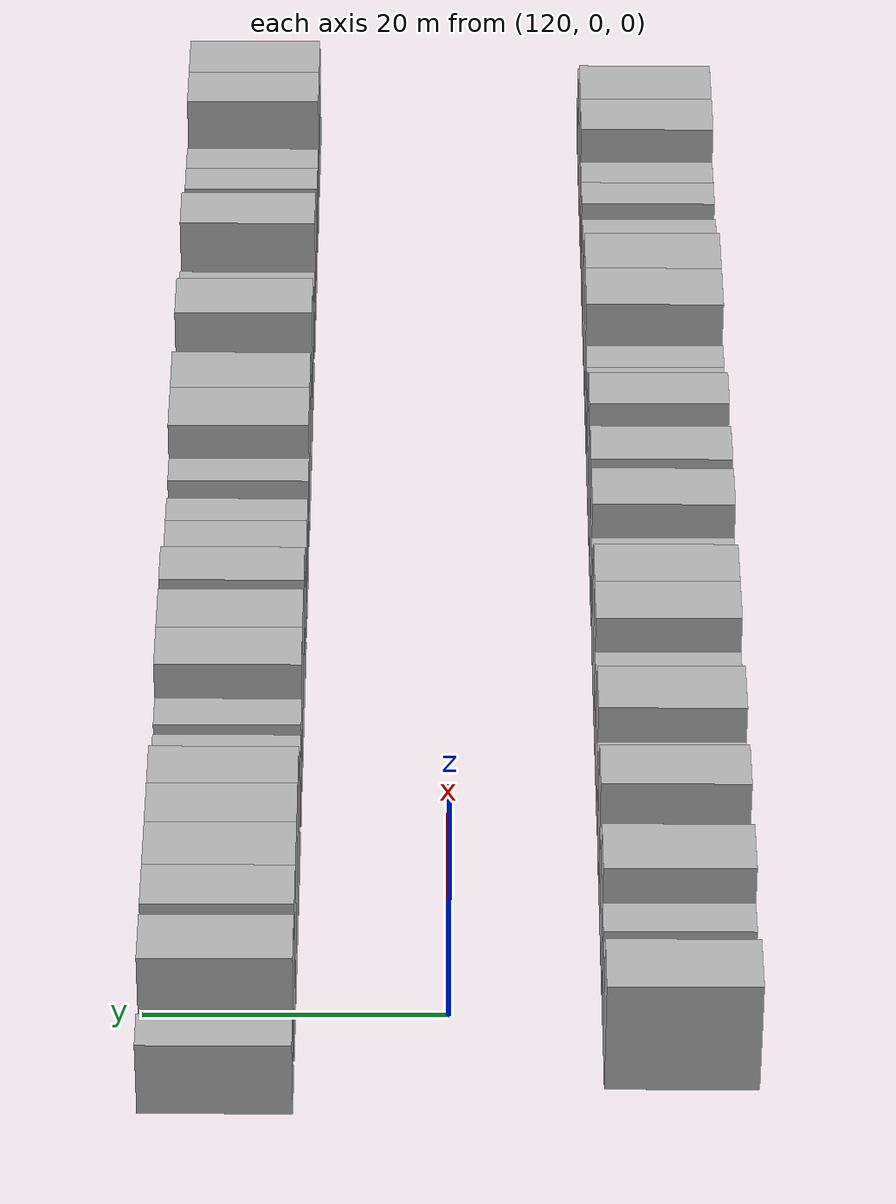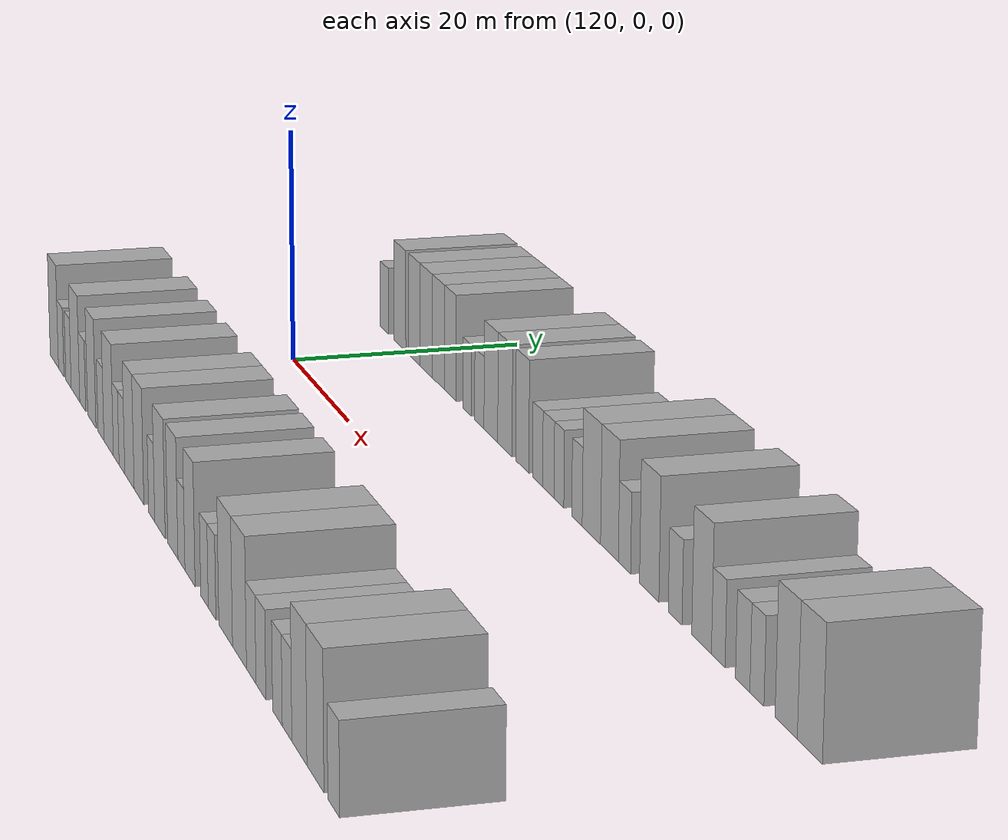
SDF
<sdf version="1.6">
 <world name="default">
  <model name="building_28">
   <static>1</static>
   <pose>112.2653 15.0000 0 0.000000 0.000000 1.570796</pose>
   <link name="link">
    <pose>0 0 3.00 0 0 0</pose>
    <collision name="collision"><geometry><box><size>10.0000 2.8916 6.0000</size></box></geometry></collision>
    <visual name="visual">
     <cast_shadows>0</cast_shadows>
     <geometry><box><size>10.0000 2.8916 6.0000</size></box></geometry>
     <material>
      <script>
       <uri>model://HANNAS_wall/materials/scripts</uri>
       <uri>model://HANNAS_wall/materials/textures</uri>
       <name>vrc/HANNAS_wall</name>
      </script>
     </material>
    </visual>
   </link>
  </model>
  <model name="building_29">
   <static>1</static>
   <pose>117.7975 15.0000 0 0.000000 0.000000 1.570796</pose>
   <link name="link">
    <pose>0 0 4.50 0 0 0</pose>
    <collision name="collision"><geometry><box><size>10.0000 4.1728 9.0000</size></box></geometry></collision>
    <visual name="visual">
     <cast_shadows>0</cast_shadows>
     <geometry><box><size>10.0000 4.1728 9.0000</size></box></geometry>
     <material>
      <script>
       <uri>model://HANNAS_wall/materials/scripts</uri>
       <uri>model://HANNAS_wall/materials/textures</uri>
       <name>vrc/HANNAS_wall</name>
      </script>
     </material>
    </visual>
   </link>
  </model>
  <model name="building_30">
   <static>1</static>
   <pose>122.7850 15.0000 0 0.000000 0.000000 1.570796</pose>
   <link name="link">
    <pose>0 0 4.50 0 0 0</pose>
    <collision name="collision"><geometry><box><size>10.0000 3.8023 9.0000</size></box></geometry></collision>
    <visual name="visual">
     <cast_shadows>0</cast_shadows>
     <geometry><box><size>10.0000 3.8023 9.0000</size></box></geometry>
     <material>
      <script>
       <uri>model://HANNAS_wall/materials/scripts</uri>
       <uri>model://HANNAS_wall/materials/textures</uri>
       <name>vrc/HANNAS_wall</name>
      </script>
     </material>
    </visual>
   </link>
  </model>
  <model name="building_31">
   <static>1</static>
   <pose>126.7876 15.0000 0 0.000000 0.000000 1.570796</pose>
   <link name="link">
    <pose>0 0 4.50 0 0 0</pose>
    <collision name="collision"><geometry><box><size>10.0000 4.2027 9.0000</size></box></geometry></collision>
    <visual name="visual">
     <cast_shadows>0</cast_shadows>
     <geometry><box><size>10.0000 4.2027 9.0000</size></box></geometry>
     <material>
      <script>
       <uri>model://HANNAS_wall/materials/scripts</uri>
       <uri>model://HANNAS_wall/materials/textures</uri>
       <name>vrc/HANNAS_wall</name>
      </script>
     </material>
    </visual>
   </link>
  </model>
  <model name="building_32">
   <static>1</static>
   <pose>130.8163 15.0000 0 0.000000 0.000000 1.570796</pose>
   <link name="link">
    <pose>0 0 4.50 0 0 0</pose>
    <collision name="collision"><geometry><box><size>10.0000 3.8548 9.0000</size></box></geometry></collision>
    <visual name="visual">
     <cast_shadows>0</cast_shadows>
     <geometry><box><size>10.0000 3.8548 9.0000</size></box></geometry>
     <material>
      <script>
       <uri>model://HANNAS_wall/materials/scripts</uri>
       <uri>model://HANNAS_wall/materials/textures</uri>
       <name>vrc/HANNAS_wall</name>
      </script>
     </material>
    </visual>
   </link>
  </model>
  <model name="building_33">
   <static>1</static>
   <pose>134.6118 15.0000 0 0.000000 0.000000 1.570796</pose>
   <link name="link">
    <pose>0 0 4.50 0 0 0</pose>
    <collision name="collision"><geometry><box><size>10.0000 3.7360 9.0000</size></box></geometry></collision>
    <visual name="visual">
     <cast_shadows>0</cast_shadows>
     <geometry><box><size>10.0000 3.7360 9.0000</size></box></geometry>
     <material>
      <script>
       <uri>model://HANNAS_wall/materials/scripts</uri>
       <uri>model://HANNAS_wall/materials/textures</uri>
       <name>vrc/HANNAS_wall</name>
      </script>
     </material>
    </visual>
   </link>
  </model>
  <model name="building_34">
   <static>1</static>
   <pose>139.8193 15.0000 0 0.000000 0.000000 1.570796</pose>
   <link name="link">
    <pose>0 0 3.00 0 0 0</pose>
    <collision name="collision"><geometry><box><size>10.0000 2.6792 6.0000</size></box></geometry></collision>
    <visual name="visual">
     <cast_shadows>0</cast_shadows>
     <geometry><box><size>10.0000 2.6792 6.0000</size></box></geometry>
     <material>
      <script>
       <uri>model://HANNAS_wall/materials/scripts</uri>
       <uri>model://HANNAS_wall/materials/textures</uri>
       <name>vrc/HANNAS_wall</name>
      </script>
     </material>
    </visual>
   </link>
  </model>
  <model name="building_35">
   <static>1</static>
   <pose>143.5495 15.0000 0 0.000000 0.000000 1.570796</pose>
   <link name="link">
    <pose>0 0 3.00 0 0 0</pose>
    <collision name="collision"><geometry><box><size>10.0000 2.7812 6.0000</size></box></geometry></collision>
    <visual name="visual">
     <cast_shadows>0</cast_shadows>
     <geometry><box><size>10.0000 2.7812 6.0000</size></box></geometry>
     <material>
      <script>
       <uri>model://HANNAS_wall/materials/scripts</uri>
       <uri>model://HANNAS_wall/materials/textures</uri>
       <name>vrc/HANNAS_wall</name>
      </script>
     </material>
    </visual>
   </link>
  </model>
  <model name="building_36">
   <static>1</static>
   <pose>146.9431 15.0000 0 0.000000 0.000000 1.570796</pose>
   <link name="link">
    <pose>0 0 4.50 0 0 0</pose>
    <collision name="collision"><geometry><box><size>10.0000 4.0059 9.0000</size></box></geometry></collision>
    <visual name="visual">
     <cast_shadows>0</cast_shadows>
     <geometry><box><size>10.0000 4.0059 9.0000</size></box></geometry>
     <material>
      <script>
       <uri>model://HANNAS_wall/materials/scripts</uri>
       <uri>model://HANNAS_wall/materials/textures</uri>
       <name>vrc/HANNAS_wall</name>
      </script>
     </material>
    </visual>
   </link>
  </model>
  <model name="building_37">
   <static>1</static>
   <pose>150.9818 15.0000 0 0.000000 0.000000 1.570796</pose>
   <link name="link">
    <pose>0 0 4.50 0 0 0</pose>
    <collision name="collision"><geometry><box><size>10.0000 4.0716 9.0000</size></box></geometry></collision>
    <visual name="visual">
     <cast_shadows>0</cast_shadows>
     <geometry><box><size>10.0000 4.0716 9.0000</size></box></geometry>
     <material>
      <script>
       <uri>model://HANNAS_wall/materials/scripts</uri>
       <uri>model://HANNAS_wall/materials/textures</uri>
       <name>vrc/HANNAS_wall</name>
      </script>
     </material>
    </visual>
   </link>
  </model>
  <model name="building_38">
   <static>1</static>
   <pose>155.8310 15.0000 0 0.000000 0.000000 1.570796</pose>
   <link name="link">
    <pose>0 0 4.50 0 0 0</pose>
    <collision name="collision"><geometry><box><size>10.0000 3.6268 9.0000</size></box></geometry></collision>
    <visual name="visual">
     <cast_shadows>0</cast_shadows>
     <geometry><box><size>10.0000 3.6268 9.0000</size></box></geometry>
     <material>
      <script>
       <uri>model://HANNAS_wall/materials/scripts</uri>
       <uri>model://HANNAS_wall/materials/textures</uri>
       <name>vrc/HANNAS_wall</name>
      </script>
     </material>
    </visual>
   </link>
  </model>
  <model name="building_39">
   <static>1</static>
   <pose>159.9949 15.0000 0 0.000000 0.000000 1.570796</pose>
   <link name="link">
    <pose>0 0 3.00 0 0 0</pose>
    <collision name="collision"><geometry><box><size>10.0000 2.7010 6.0000</size></box></geometry></collision>
    <visual name="visual">
     <cast_shadows>0</cast_shadows>
     <geometry><box><size>10.0000 2.7010 6.0000</size></box></geometry>
     <material>
      <script>
       <uri>model://HANNAS_wall/materials/scripts</uri>
       <uri>model://HANNAS_wall/materials/textures</uri>
       <name>vrc/HANNAS_wall</name>
      </script>
     </material>
    </visual>
   </link>
  </model>
  <model name="building_40">
   <static>1</static>
   <pose>162.8355 15.0000 0 0.000000 0.000000 1.570796</pose>
   <link name="link">
    <pose>0 0 3.00 0 0 0</pose>
    <collision name="collision"><geometry><box><size>10.0000 2.9804 6.0000</size></box></geometry></collision>
    <visual name="visual">
     <cast_shadows>0</cast_shadows>
     <geometry><box><size>10.0000 2.9804 6.0000</size></box></geometry>
     <material>
      <script>
       <uri>model://HANNAS_wall/materials/scripts</uri>
       <uri>model://HANNAS_wall/materials/textures</uri>
       <name>vrc/HANNAS_wall</name>
      </script>
     </material>
    </visual>
   </link>
  </model>
  <model name="building_41">
   <static>1</static>
   <pose>165.5868 15.0000 0 0.000000 0.000000 1.570796</pose>
   <link name="link">
    <pose>0 0 3.00 0 0 0</pose>
    <collision name="collision"><geometry><box><size>10.0000 2.5222 6.0000</size></box></geometry></collision>
    <visual name="visual">
     <cast_shadows>0</cast_shadows>
     <geometry><box><size>10.0000 2.5222 6.0000</size></box></geometry>
     <material>
      <script>
       <uri>model://HANNAS_wall/materials/scripts</uri>
       <uri>model://HANNAS_wall/materials/textures</uri>
       <name>vrc/HANNAS_wall</name>
      </script>
     </material>
    </visual>
   </link>
  </model>
  <model name="building_42">
   <static>1</static>
   <pose>170.1499 15.0000 0 0.000000 0.000000 1.570796</pose>
   <link name="link">
    <pose>0 0 3.00 0 0 0</pose>
    <collision name="collision"><geometry><box><size>10.0000 2.6039 6.0000</size></box></geometry></collision>
    <visual name="visual">
     <cast_shadows>0</cast_shadows>
     <geometry><box><size>10.0000 2.6039 6.0000</size></box></geometry>
     <material>
      <script>
       <uri>model://HANNAS_wall/materials/scripts</uri>
       <uri>model://HANNAS_wall/materials/textures</uri>
       <name>vrc/HANNAS_wall</name>
      </script>
     </material>
    </visual>
   </link>
  </model>
  <model name="building_43">
   <static>1</static>
   <pose>173.6808 15.0000 0 0.000000 0.000000 1.570796</pose>
   <link name="link">
    <pose>0 0 4.50 0 0 0</pose>
    <collision name="collision"><geometry><box><size>10.0000 4.4580 9.0000</size></box></geometry></collision>
    <visual name="visual">
     <cast_shadows>0</cast_shadows>
     <geometry><box><size>10.0000 4.4580 9.0000</size></box></geometry>
     <material>
      <script>
       <uri>model://HANNAS_wall/materials/scripts</uri>
       <uri>model://HANNAS_wall/materials/textures</uri>
       <name>vrc/HANNAS_wall</name>
      </script>
     </material>
    </visual>
   </link>
  </model>
  <model name="building_44">
   <static>1</static>
   <pose>177.9946 15.0000 0 0.000000 0.000000 1.570796</pose>
   <link name="link">
    <pose>0 0 4.50 0 0 0</pose>
    <collision name="collision"><geometry><box><size>10.0000 4.1695 9.0000</size></box></geometry></collision>
    <visual name="visual">
     <cast_shadows>0</cast_shadows>
     <geometry><box><size>10.0000 4.1695 9.0000</size></box></geometry>
     <material>
      <script>
       <uri>model://HANNAS_wall/materials/scripts</uri>
       <uri>model://HANNAS_wall/materials/textures</uri>
       <name>vrc/HANNAS_wall</name>
      </script>
     </material>
    </visual>
   </link>
  </model>
  <model name="building_45">
   <static>1</static>
   <pose>181.4809 15.0000 0 0.000000 0.000000 1.570796</pose>
   <link name="link">
    <pose>0 0 3.00 0 0 0</pose>
    <collision name="collision"><geometry><box><size>10.0000 2.8030 6.0000</size></box></geometry></collision>
    <visual name="visual">
     <cast_shadows>0</cast_shadows>
     <geometry><box><size>10.0000 2.8030 6.0000</size></box></geometry>
     <material>
      <script>
       <uri>model://HANNAS_wall/materials/scripts</uri>
       <uri>model://HANNAS_wall/materials/textures</uri>
       <name>vrc/HANNAS_wall</name>
      </script>
     </material>
    </visual>
   </link>
  </model>
  <model name="building_46">
   <static>1</static>
   <pose>187.0025 15.0000 0 0.000000 0.000000 1.570796</pose>
   <link name="link">
    <pose>0 0 4.50 0 0 0</pose>
    <collision name="collision"><geometry><box><size>10.0000 4.2403 9.0000</size></box></geometry></collision>
    <visual name="visual">
     <cast_shadows>0</cast_shadows>
     <geometry><box><size>10.0000 4.2403 9.0000</size></box></geometry>
     <material>
      <script>
       <uri>model://HANNAS_wall/materials/scripts</uri>
       <uri>model://HANNAS_wall/materials/textures</uri>
       <name>vrc/HANNAS_wall</name>
      </script>
     </material>
    </visual>
   </link>
  </model>
  <model name="building_47">
   <static>1</static>
   <pose>192.5704 15.0000 0 0.000000 0.000000 1.570796</pose>
   <link name="link">
    <pose>0 0 3.00 0 0 0</pose>
    <collision name="collision"><geometry><box><size>10.0000 2.8953 6.0000</size></box></geometry></collision>
    <visual name="visual">
     <cast_shadows>0</cast_shadows>
     <geometry><box><size>10.0000 2.8953 6.0000</size></box></geometry>
     <material>
      <script>
       <uri>model://HANNAS_wall/materials/scripts</uri>
       <uri>model://HANNAS_wall/materials/textures</uri>
       <name>vrc/HANNAS_wall</name>
      </script>
     </material>
    </visual>
   </link>
  </model>
  <model name="building_48">
   <static>1</static>
   <pose>197.9953 15.0000 0 0.000000 0.000000 1.570796</pose>
   <link name="link">
    <pose>0 0 4.50 0 0 0</pose>
    <collision name="collision"><geometry><box><size>10.0000 3.9546 9.0000</size></box></geometry></collision>
    <visual name="visual">
     <cast_shadows>0</cast_shadows>
     <geometry><box><size>10.0000 3.9546 9.0000</size></box></geometry>
     <material>
      <script>
       <uri>model://HANNAS_wall/materials/scripts</uri>
       <uri>model://HANNAS_wall/materials/textures</uri>
       <name>vrc/HANNAS_wall</name>
      </script>
     </material>
    </visual>
   </link>
  </model>
  <model name="building_49">
   <static>1</static>
   <pose>201.3048 15.0000 0 0.000000 0.000000 1.570796</pose>
   <link name="link">
    <pose>0 0 3.00 0 0 0</pose>
    <collision name="collision"><geometry><box><size>10.0000 2.6645 6.0000</size></box></geometry></collision>
    <visual name="visual">
     <cast_shadows>0</cast_shadows>
     <geometry><box><size>10.0000 2.6645 6.0000</size></box></geometry>
     <material>
      <script>
       <uri>model://HANNAS_wall/materials/scripts</uri>
       <uri>model://HANNAS_wall/materials/textures</uri>
       <name>vrc/HANNAS_wall</name>
      </script>
     </material>
    </visual>
   </link>
  </model>
  <model name="building_50">
   <static>1</static>
   <pose>205.9908 15.0000 0 0.000000 0.000000 1.570796</pose>
   <link name="link">
    <pose>0 0 3.00 0 0 0</pose>
    <collision name="collision"><geometry><box><size>10.0000 2.7075 6.0000</size></box></geometry></collision>
    <visual name="visual">
     <cast_shadows>0</cast_shadows>
     <geometry><box><size>10.0000 2.7075 6.0000</size></box></geometry>
     <material>
      <script>
       <uri>model://HANNAS_wall/materials/scripts</uri>
       <uri>model://HANNAS_wall/materials/textures</uri>
       <name>vrc/HANNAS_wall</name>
      </script>
     </material>
    </visual>
   </link>
  </model>
  <model name="building_51">
   <static>1</static>
   <pose>208.6458 15.0000 0 0.000000 0.000000 1.570796</pose>
   <link name="link">
    <pose>0 0 3.00 0 0 0</pose>
    <collision name="collision"><geometry><box><size>10.0000 2.6025 6.0000</size></box></geometry></collision>
    <visual name="visual">
     <cast_shadows>0</cast_shadows>
     <geometry><box><size>10.0000 2.6025 6.0000</size></box></geometry>
     <material>
      <script>
       <uri>model://HANNAS_wall/materials/scripts</uri>
       <uri>model://HANNAS_wall/materials/textures</uri>
       <name>vrc/HANNAS_wall</name>
      </script>
     </material>
    </visual>
   </link>
  </model>
  <model name="building_52">
   <static>1</static>
   <pose>213.9075 15.0000 0 0.000000 0.000000 1.570796</pose>
   <link name="link">
    <pose>0 0 4.50 0 0 0</pose>
    <collision name="collision"><geometry><box><size>10.0000 3.9208 9.0000</size></box></geometry></collision>
    <visual name="visual">
     <cast_shadows>0</cast_shadows>
     <geometry><box><size>10.0000 3.9208 9.0000</size></box></geometry>
     <material>
      <script>
       <uri>model://HANNAS_wall/materials/scripts</uri>
       <uri>model://HANNAS_wall/materials/textures</uri>
       <name>vrc/HANNAS_wall</name>
      </script>
     </material>
    </visual>
   </link>
  </model>
  <model name="building_53">
   <static>1</static>
   <pose>218.0046 15.0000 0 0.000000 0.000000 1.570796</pose>
   <link name="link">
    <pose>0 0 4.50 0 0 0</pose>
    <collision name="collision"><geometry><box><size>10.0000 4.2734 9.0000</size></box></geometry></collision>
    <visual name="visual">
     <cast_shadows>0</cast_shadows>
     <geometry><box><size>10.0000 4.2734 9.0000</size></box></geometry>
     <material>
      <script>
       <uri>model://HANNAS_wall/materials/scripts</uri>
       <uri>model://HANNAS_wall/materials/textures</uri>
       <name>vrc/HANNAS_wall</name>
      </script>
     </material>
    </visual>
   </link>
  </model>
  <model name="building_80">
   <static>1</static>
   <pose>115.3988 -15.0000 0 0.000000 0.000000 1.570796</pose>
   <link name="link">
    <pose>0 0 4.50 0 0 0</pose>
    <collision name="collision"><geometry><box><size>10.0000 4.4987 9.0000</size></box></geometry></collision>
    <visual name="visual">
     <cast_shadows>0</cast_shadows>
     <geometry><box><size>10.0000 4.4987 9.0000</size></box></geometry>
     <material>
      <script>
       <uri>model://HANNAS_wall/materials/scripts</uri>
       <uri>model://HANNAS_wall/materials/textures</uri>
       <name>vrc/HANNAS_wall</name>
      </script>
     </material>
    </visual>
   </link>
  </model>
  <model name="building_81">
   <static>1</static>
   <pose>119.1269 -15.0000 0 0.000000 0.000000 1.570796</pose>
   <link name="link">
    <pose>0 0 3.00 0 0 0</pose>
    <collision name="collision"><geometry><box><size>10.0000 2.9574 6.0000</size></box></geometry></collision>
    <visual name="visual">
     <cast_shadows>0</cast_shadows>
     <geometry><box><size>10.0000 2.9574 6.0000</size></box></geometry>
     <material>
      <script>
       <uri>model://HANNAS_wall/materials/scripts</uri>
       <uri>model://HANNAS_wall/materials/textures</uri>
       <name>vrc/HANNAS_wall</name>
      </script>
     </material>
    </visual>
   </link>
  </model>
  <model name="building_82">
   <static>1</static>
   <pose>123.0018 -15.0000 0 0.000000 0.000000 1.570796</pose>
   <link name="link">
    <pose>0 0 3.00 0 0 0</pose>
    <collision name="collision"><geometry><box><size>10.0000 2.7923 6.0000</size></box></geometry></collision>
    <visual name="visual">
     <cast_shadows>0</cast_shadows>
     <geometry><box><size>10.0000 2.7923 6.0000</size></box></geometry>
     <material>
      <script>
       <uri>model://HANNAS_wall/materials/scripts</uri>
       <uri>model://HANNAS_wall/materials/textures</uri>
       <name>vrc/HANNAS_wall</name>
      </script>
     </material>
    </visual>
   </link>
  </model>
  <model name="building_83">
   <static>1</static>
   <pose>126.5871 -15.0000 0 0.000000 0.000000 1.570796</pose>
   <link name="link">
    <pose>0 0 4.50 0 0 0</pose>
    <collision name="collision"><geometry><box><size>10.0000 4.3782 9.0000</size></box></geometry></collision>
    <visual name="visual">
     <cast_shadows>0</cast_shadows>
     <geometry><box><size>10.0000 4.3782 9.0000</size></box></geometry>
     <material>
      <script>
       <uri>model://HANNAS_wall/materials/scripts</uri>
       <uri>model://HANNAS_wall/materials/textures</uri>
       <name>vrc/HANNAS_wall</name>
      </script>
     </material>
    </visual>
   </link>
  </model>
  <model name="building_84">
   <static>1</static>
   <pose>130.2666 -15.0000 0 0.000000 0.000000 1.570796</pose>
   <link name="link">
    <pose>0 0 3.00 0 0 0</pose>
    <collision name="collision"><geometry><box><size>10.0000 2.9809 6.0000</size></box></geometry></collision>
    <visual name="visual">
     <cast_shadows>0</cast_shadows>
     <geometry><box><size>10.0000 2.9809 6.0000</size></box></geometry>
     <material>
      <script>
       <uri>model://HANNAS_wall/materials/scripts</uri>
       <uri>model://HANNAS_wall/materials/textures</uri>
       <name>vrc/HANNAS_wall</name>
      </script>
     </material>
    </visual>
   </link>
  </model>
  <model name="building_85">
   <static>1</static>
   <pose>134.7464 -15.0000 0 0.000000 0.000000 1.570796</pose>
   <link name="link">
    <pose>0 0 4.50 0 0 0</pose>
    <collision name="collision"><geometry><box><size>10.0000 3.9786 9.0000</size></box></geometry></collision>
    <visual name="visual">
     <cast_shadows>0</cast_shadows>
     <geometry><box><size>10.0000 3.9786 9.0000</size></box></geometry>
     <material>
      <script>
       <uri>model://HANNAS_wall/materials/scripts</uri>
       <uri>model://HANNAS_wall/materials/textures</uri>
       <name>vrc/HANNAS_wall</name>
      </script>
     </material>
    </visual>
   </link>
  </model>
  <model name="building_86">
   <static>1</static>
   <pose>139.1237 -15.0000 0 0.000000 0.000000 1.570796</pose>
   <link name="link">
    <pose>0 0 3.00 0 0 0</pose>
    <collision name="collision"><geometry><box><size>10.0000 2.7761 6.0000</size></box></geometry></collision>
    <visual name="visual">
     <cast_shadows>0</cast_shadows>
     <geometry><box><size>10.0000 2.7761 6.0000</size></box></geometry>
     <material>
      <script>
       <uri>model://HANNAS_wall/materials/scripts</uri>
       <uri>model://HANNAS_wall/materials/textures</uri>
       <name>vrc/HANNAS_wall</name>
      </script>
     </material>
    </visual>
   </link>
  </model>
  <model name="building_87">
   <static>1</static>
   <pose>142.6995 -15.0000 0 0.000000 0.000000 1.570796</pose>
   <link name="link">
    <pose>0 0 4.50 0 0 0</pose>
    <collision name="collision"><geometry><box><size>10.0000 4.3755 9.0000</size></box></geometry></collision>
    <visual name="visual">
     <cast_shadows>0</cast_shadows>
     <geometry><box><size>10.0000 4.3755 9.0000</size></box></geometry>
     <material>
      <script>
       <uri>model://HANNAS_wall/materials/scripts</uri>
       <uri>model://HANNAS_wall/materials/textures</uri>
       <name>vrc/HANNAS_wall</name>
      </script>
     </material>
    </visual>
   </link>
  </model>
  <model name="building_88">
   <static>1</static>
   <pose>146.1512 -15.0000 0 0.000000 0.000000 1.570796</pose>
   <link name="link">
    <pose>0 0 3.00 0 0 0</pose>
    <collision name="collision"><geometry><box><size>10.0000 2.5279 6.0000</size></box></geometry></collision>
    <visual name="visual">
     <cast_shadows>0</cast_shadows>
     <geometry><box><size>10.0000 2.5279 6.0000</size></box></geometry>
     <material>
      <script>
       <uri>model://HANNAS_wall/materials/scripts</uri>
       <uri>model://HANNAS_wall/materials/textures</uri>
       <name>vrc/HANNAS_wall</name>
      </script>
     </material>
    </visual>
   </link>
  </model>
  <model name="building_89">
   <static>1</static>
   <pose>148.6807 -15.0000 0 0.000000 0.000000 1.570796</pose>
   <link name="link">
    <pose>0 0 3.00 0 0 0</pose>
    <collision name="collision"><geometry><box><size>10.0000 2.5311 6.0000</size></box></geometry></collision>
    <visual name="visual">
     <cast_shadows>0</cast_shadows>
     <geometry><box><size>10.0000 2.5311 6.0000</size></box></geometry>
     <material>
      <script>
       <uri>model://HANNAS_wall/materials/scripts</uri>
       <uri>model://HANNAS_wall/materials/textures</uri>
       <name>vrc/HANNAS_wall</name>
      </script>
     </material>
    </visual>
   </link>
  </model>
  <model name="building_90">
   <static>1</static>
   <pose>151.9727 -15.0000 0 0.000000 0.000000 1.570796</pose>
   <link name="link">
    <pose>0 0 4.50 0 0 0</pose>
    <collision name="collision"><geometry><box><size>10.0000 4.0530 9.0000</size></box></geometry></collision>
    <visual name="visual">
     <cast_shadows>0</cast_shadows>
     <geometry><box><size>10.0000 4.0530 9.0000</size></box></geometry>
     <material>
      <script>
       <uri>model://HANNAS_wall/materials/scripts</uri>
       <uri>model://HANNAS_wall/materials/textures</uri>
       <name>vrc/HANNAS_wall</name>
      </script>
     </material>
    </visual>
   </link>
  </model>
  <model name="building_91">
   <static>1</static>
   <pose>156.0216 -15.0000 0 0.000000 0.000000 1.570796</pose>
   <link name="link">
    <pose>0 0 4.50 0 0 0</pose>
    <collision name="collision"><geometry><box><size>10.0000 4.0447 9.0000</size></box></geometry></collision>
    <visual name="visual">
     <cast_shadows>0</cast_shadows>
     <geometry><box><size>10.0000 4.0447 9.0000</size></box></geometry>
     <material>
      <script>
       <uri>model://HANNAS_wall/materials/scripts</uri>
       <uri>model://HANNAS_wall/materials/textures</uri>
       <name>vrc/HANNAS_wall</name>
      </script>
     </material>
    </visual>
   </link>
  </model>
  <model name="building_92">
   <static>1</static>
   <pose>161.2626 -15.0000 0 0.000000 0.000000 1.570796</pose>
   <link name="link">
    <pose>0 0 3.00 0 0 0</pose>
    <collision name="collision"><geometry><box><size>10.0000 2.4373 6.0000</size></box></geometry></collision>
    <visual name="visual">
     <cast_shadows>0</cast_shadows>
     <geometry><box><size>10.0000 2.4373 6.0000</size></box></geometry>
     <material>
      <script>
       <uri>model://HANNAS_wall/materials/scripts</uri>
       <uri>model://HANNAS_wall/materials/textures</uri>
       <name>vrc/HANNAS_wall</name>
      </script>
     </material>
    </visual>
   </link>
  </model>
  <model name="building_93">
   <static>1</static>
   <pose>164.5427 -15.0000 0 0.000000 0.000000 1.570796</pose>
   <link name="link">
    <pose>0 0 4.50 0 0 0</pose>
    <collision name="collision"><geometry><box><size>10.0000 4.1230 9.0000</size></box></geometry></collision>
    <visual name="visual">
     <cast_shadows>0</cast_shadows>
     <geometry><box><size>10.0000 4.1230 9.0000</size></box></geometry>
     <material>
      <script>
       <uri>model://HANNAS_wall/materials/scripts</uri>
       <uri>model://HANNAS_wall/materials/textures</uri>
       <name>vrc/HANNAS_wall</name>
      </script>
     </material>
    </visual>
   </link>
  </model>
  <model name="building_94">
   <static>1</static>
   <pose>169.5407 -15.0000 0 0.000000 0.000000 1.570796</pose>
   <link name="link">
    <pose>0 0 4.50 0 0 0</pose>
    <collision name="collision"><geometry><box><size>10.0000 3.8729 9.0000</size></box></geometry></collision>
    <visual name="visual">
     <cast_shadows>0</cast_shadows>
     <geometry><box><size>10.0000 3.8729 9.0000</size></box></geometry>
     <material>
      <script>
       <uri>model://HANNAS_wall/materials/scripts</uri>
       <uri>model://HANNAS_wall/materials/textures</uri>
       <name>vrc/HANNAS_wall</name>
      </script>
     </material>
    </visual>
   </link>
  </model>
  <model name="building_95">
   <static>1</static>
   <pose>172.7690 -15.0000 0 0.000000 0.000000 1.570796</pose>
   <link name="link">
    <pose>0 0 3.00 0 0 0</pose>
    <collision name="collision"><geometry><box><size>10.0000 2.5838 6.0000</size></box></geometry></collision>
    <visual name="visual">
     <cast_shadows>0</cast_shadows>
     <geometry><box><size>10.0000 2.5838 6.0000</size></box></geometry>
     <material>
      <script>
       <uri>model://HANNAS_wall/materials/scripts</uri>
       <uri>model://HANNAS_wall/materials/textures</uri>
       <name>vrc/HANNAS_wall</name>
      </script>
     </material>
    </visual>
   </link>
  </model>
  <model name="building_96">
   <static>1</static>
   <pose>175.9066 -15.0000 0 0.000000 0.000000 1.570796</pose>
   <link name="link">
    <pose>0 0 4.50 0 0 0</pose>
    <collision name="collision"><geometry><box><size>10.0000 3.6913 9.0000</size></box></geometry></collision>
    <visual name="visual">
     <cast_shadows>0</cast_shadows>
     <geometry><box><size>10.0000 3.6913 9.0000</size></box></geometry>
     <material>
      <script>
       <uri>model://HANNAS_wall/materials/scripts</uri>
       <uri>model://HANNAS_wall/materials/textures</uri>
       <name>vrc/HANNAS_wall</name>
      </script>
     </material>
    </visual>
   </link>
  </model>
  <model name="building_97">
   <static>1</static>
   <pose>181.0615 -15.0000 0 0.000000 0.000000 1.570796</pose>
   <link name="link">
    <pose>0 0 3.00 0 0 0</pose>
    <collision name="collision"><geometry><box><size>10.0000 2.6185 6.0000</size></box></geometry></collision>
    <visual name="visual">
     <cast_shadows>0</cast_shadows>
     <geometry><box><size>10.0000 2.6185 6.0000</size></box></geometry>
     <material>
      <script>
       <uri>model://HANNAS_wall/materials/scripts</uri>
       <uri>model://HANNAS_wall/materials/textures</uri>
       <name>vrc/HANNAS_wall</name>
      </script>
     </material>
    </visual>
   </link>
  </model>
  <model name="building_98">
   <static>1</static>
   <pose>183.6732 -15.0000 0 0.000000 0.000000 1.570796</pose>
   <link name="link">
    <pose>0 0 3.00 0 0 0</pose>
    <collision name="collision"><geometry><box><size>10.0000 2.6050 6.0000</size></box></geometry></collision>
    <visual name="visual">
     <cast_shadows>0</cast_shadows>
     <geometry><box><size>10.0000 2.6050 6.0000</size></box></geometry>
     <material>
      <script>
       <uri>model://HANNAS_wall/materials/scripts</uri>
       <uri>model://HANNAS_wall/materials/textures</uri>
       <name>vrc/HANNAS_wall</name>
      </script>
     </material>
    </visual>
   </link>
  </model>
  <model name="building_99">
   <static>1</static>
   <pose>188.2229 -15.0000 0 0.000000 0.000000 1.570796</pose>
   <link name="link">
    <pose>0 0 4.50 0 0 0</pose>
    <collision name="collision"><geometry><box><size>10.0000 4.4943 9.0000</size></box></geometry></collision>
    <visual name="visual">
     <cast_shadows>0</cast_shadows>
     <geometry><box><size>10.0000 4.4943 9.0000</size></box></geometry>
     <material>
      <script>
       <uri>model://HANNAS_wall/materials/scripts</uri>
       <uri>model://HANNAS_wall/materials/textures</uri>
       <name>vrc/HANNAS_wall</name>
      </script>
     </material>
    </visual>
   </link>
  </model>
  <model name="building_100">
   <static>1</static>
   <pose>192.6828 -15.0000 0 0.000000 0.000000 1.570796</pose>
   <link name="link">
    <pose>0 0 4.50 0 0 0</pose>
    <collision name="collision"><geometry><box><size>10.0000 4.4255 9.0000</size></box></geometry></collision>
    <visual name="visual">
     <cast_shadows>0</cast_shadows>
     <geometry><box><size>10.0000 4.4255 9.0000</size></box></geometry>
     <material>
      <script>
       <uri>model://HANNAS_wall/materials/scripts</uri>
       <uri>model://HANNAS_wall/materials/textures</uri>
       <name>vrc/HANNAS_wall</name>
      </script>
     </material>
    </visual>
   </link>
  </model>
  <model name="building_101">
   <static>1</static>
   <pose>196.3630 -15.0000 0 0.000000 0.000000 1.570796</pose>
   <link name="link">
    <pose>0 0 3.00 0 0 0</pose>
    <collision name="collision"><geometry><box><size>10.0000 2.9349 6.0000</size></box></geometry></collision>
    <visual name="visual">
     <cast_shadows>0</cast_shadows>
     <geometry><box><size>10.0000 2.9349 6.0000</size></box></geometry>
     <material>
      <script>
       <uri>model://HANNAS_wall/materials/scripts</uri>
       <uri>model://HANNAS_wall/materials/textures</uri>
       <name>vrc/HANNAS_wall</name>
      </script>
     </material>
    </visual>
   </link>
  </model>
  <model name="building_102">
   <static>1</static>
   <pose>199.3091 -15.0000 0 0.000000 0.000000 1.570796</pose>
   <link name="link">
    <pose>0 0 3.00 0 0 0</pose>
    <collision name="collision"><geometry><box><size>10.0000 2.9572 6.0000</size></box></geometry></collision>
    <visual name="visual">
     <cast_shadows>0</cast_shadows>
     <geometry><box><size>10.0000 2.9572 6.0000</size></box></geometry>
     <material>
      <script>
       <uri>model://HANNAS_wall/materials/scripts</uri>
       <uri>model://HANNAS_wall/materials/textures</uri>
       <name>vrc/HANNAS_wall</name>
      </script>
     </material>
    </visual>
   </link>
  </model>
  <model name="building_103">
   <static>1</static>
   <pose>204.1836 -15.0000 0 0.000000 0.000000 1.570796</pose>
   <link name="link">
    <pose>0 0 3.00 0 0 0</pose>
    <collision name="collision"><geometry><box><size>10.0000 2.7918 6.0000</size></box></geometry></collision>
    <visual name="visual">
     <cast_shadows>0</cast_shadows>
     <geometry><box><size>10.0000 2.7918 6.0000</size></box></geometry>
     <material>
      <script>
       <uri>model://HANNAS_wall/materials/scripts</uri>
       <uri>model://HANNAS_wall/materials/textures</uri>
       <name>vrc/HANNAS_wall</name>
      </script>
     </material>
    </visual>
   </link>
  </model>
  <model name="building_104">
   <static>1</static>
   <pose>206.9280 -15.0000 0 0.000000 0.000000 1.570796</pose>
   <link name="link">
    <pose>0 0 3.00 0 0 0</pose>
    <collision name="collision"><geometry><box><size>10.0000 2.6971 6.0000</size></box></geometry></collision>
    <visual name="visual">
     <cast_shadows>0</cast_shadows>
     <geometry><box><size>10.0000 2.6971 6.0000</size></box></geometry>
     <material>
      <script>
       <uri>model://HANNAS_wall/materials/scripts</uri>
       <uri>model://HANNAS_wall/materials/textures</uri>
       <name>vrc/HANNAS_wall</name>
      </script>
     </material>
    </visual>
   </link>
  </model>
  <model name="building_105">
   <static>1</static>
   <pose>210.3329 -15.0000 0 0.000000 0.000000 1.570796</pose>
   <link name="link">
    <pose>0 0 4.50 0 0 0</pose>
    <collision name="collision"><geometry><box><size>10.0000 4.1126 9.0000</size></box></geometry></collision>
    <visual name="visual">
     <cast_shadows>0</cast_shadows>
     <geometry><box><size>10.0000 4.1126 9.0000</size></box></geometry>
     <material>
      <script>
       <uri>model://HANNAS_wall/materials/scripts</uri>
       <uri>model://HANNAS_wall/materials/textures</uri>
       <name>vrc/HANNAS_wall</name>
      </script>
     </material>
    </visual>
   </link>
  </model>
  <model name="building_106">
   <static>1</static>
   <pose>214.6327 -15.0000 0 0.000000 0.000000 1.570796</pose>
   <link name="link">
    <pose>0 0 4.50 0 0 0</pose>
    <collision name="collision"><geometry><box><size>10.0000 4.4870 9.0000</size></box></geometry></collision>
    <visual name="visual">
     <cast_shadows>0</cast_shadows>
     <geometry><box><size>10.0000 4.4870 9.0000</size></box></geometry>
     <material>
      <script>
       <uri>model://HANNAS_wall/materials/scripts</uri>
       <uri>model://HANNAS_wall/materials/textures</uri>
       <name>vrc/HANNAS_wall</name>
      </script>
     </material>
    </visual>
   </link>
  </model>
  <model name="building_107">
   <static>1</static>
   <pose>219.3558 -15.0000 0 0.000000 0.000000 1.570796</pose>
   <link name="link">
    <pose>0 0 3.00 0 0 0</pose>
    <collision name="collision"><geometry><box><size>10.0000 2.9592 6.0000</size></box></geometry></collision>
    <visual name="visual">
     <cast_shadows>0</cast_shadows>
     <geometry><box><size>10.0000 2.9592 6.0000</size></box></geometry>
     <material>
      <script>
       <uri>model://HANNAS_wall/materials/scripts</uri>
       <uri>model://HANNAS_wall/materials/textures</uri>
       <name>vrc/HANNAS_wall</name>
      </script>
     </material>
    </visual>
   </link>
  </model>
 </world>
</sdf>
